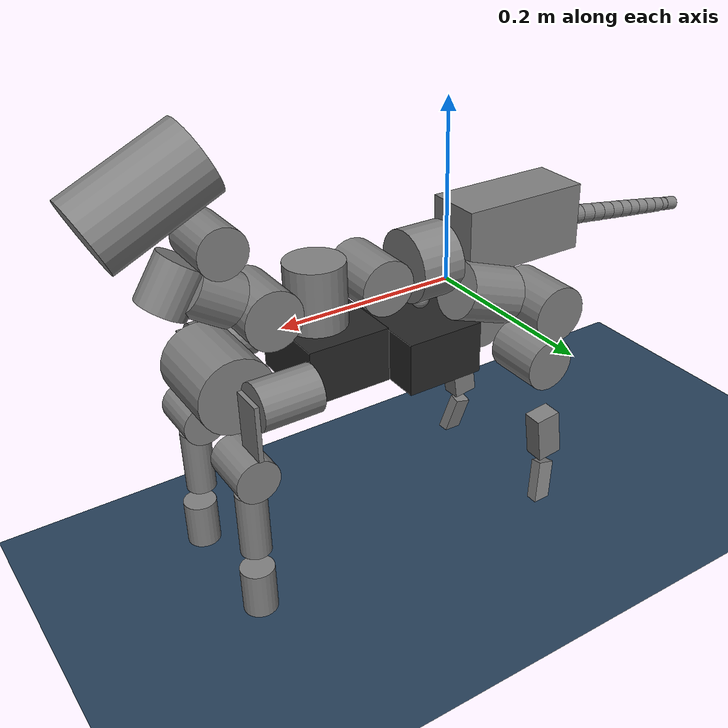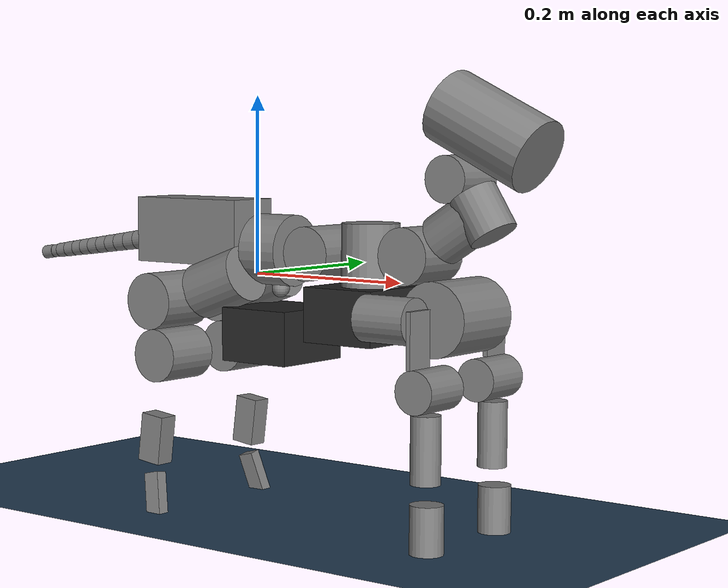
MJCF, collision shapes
<mujoco model="marsdog scene">
  <include file="marsdog.xml" />

  <statistic center="0.4 0 0.3" extent="1.2" />

  <visual>
    <headlight diffuse="0.6 0.6 0.6" ambient="0.3 0.3 0.3" specular="0 0 0" />
    <rgba haze="0.15 0.25 0.35 1" />
    <global azimuth="-140" elevation="-20" />
  </visual>

  <asset>
    <texture type="skybox" builtin="gradient" rgb1="0.3 0.5 0.7" rgb2="0 0 0" width="512" height="3072"/>
    <!-- floor -->
    <texture type="2d" name="groundplane" builtin="checker" mark="edge" rgb1="0.2 0.3 0.4" rgb2="0.1 0.2 0.3" markrgb="0.8 0.8 0.8" width="300" height="300"/>
    <material name="groundplane" texture="groundplane" texuniform="true" texrepeat="5 5" reflectance="0.2"/>
    <material name="step" rgba="0.55 0.55 0.58 1" />
  </asset>

  <worldbody>
    <!-- 机器人前方 box 台阶-->
    <light pos="0 0 1.5" dir="0 0 -1" directional="true"/>
    <geom name="floor" pos="0 0 -0.27" size="0 0 0.05" type="plane" material="groundplane" />
  </worldbody>
</mujoco>

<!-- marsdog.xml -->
<mujoco model="marsdog">
  <compiler angle="radian" meshdir="." autolimits="true"/>
  <default>
    <default class="marsdog">
      <default class="visual">
        <geom type="mesh" contype="0" conaffinity="0" group="2" density="0" material="body"/>
      </default>
      <default class="collision">
        <geom group="3" contype="1" conaffinity="1"/>
      </default>
    </default>
  </default>
  <asset>
    <material name="body" rgba="0.898039 0.917647 0.929412 1"/>
    <mesh name="base_link" file="base_link.STL" />
    <mesh name="imu_link" file="imu_link.STL" />
    <mesh name="tail1_link" file="tail1_link.STL" />
    <mesh name="tail2_link" file="tail2_link.STL" />
    <mesh name="tail3_link" file="tail3_link.STL" />
    <mesh name="tail4_link" file="tail4_link.STL" />
    <mesh name="tail5_link" file="tail5_link.STL" />
    <mesh name="tail6_link" file="tail6_link.STL" />
    <mesh name="tail7_link" file="tail7_link.STL" />
    <mesh name="tail8_link" file="tail8_link.STL" />
    <mesh name="tail9_link" file="tail9_link.STL" />
    <mesh name="tail10_link" file="tail10_link.STL" />
    <mesh name="tail11_link" file="tail11_link.STL" />
    <mesh name="tail12_link" file="tail12_link.STL" />
    <mesh name="rl_hip_link" file="rl_hip_link.STL" />
    <mesh name="rl_thigh_link" file="rl_thigh_link.STL" />
    <mesh name="rl_calf_link" file="rl_calf_link.STL" />
    <mesh name="rl_tarsus_link" file="rl_tarsus_link.STL" />
    <mesh name="rl_foot_link" file="rl_foot_link.STL" />
    <mesh name="rr_hip_link" file="rr_hip_link.STL" />
    <mesh name="rr_thigh_link" file="rr_thigh_link.STL" />
    <mesh name="rr_calf_link" file="rr_calf_link.STL" />
    <mesh name="rr_tarsus_link" file="rr_tarsus_link.STL" />
    <mesh name="rr_foot_link" file="rr_foot_link.STL" />
    <mesh name="waist_roll_link" file="waist_roll_link.STL" />
    <mesh name="waist_pitch_link" file="waist_pitch_link.STL" />
    <mesh name="waist_yaw_link" file="waist_yaw_link.STL" />
    <mesh name="neck_pitch_link" file="neck_pitch_link.STL" />
    <mesh name="head_roll_link" file="head_roll_link.STL" />
    <mesh name="head_yaw_link" file="head_yaw_link.STL" />
    <mesh name="head_pitch_link" file="head_pitch_link.STL" />
    <mesh name="fl_hip_pitch_link" file="fl_hip_pitch_link.STL" />
    <mesh name="fl_thigh_roll_link" file="fl_thigh_roll_link.STL" />
    <mesh name="fl_calf_link" file="fl_calf_link.STL" />
    <mesh name="fl_tarsus_link" file="fl_tarsus_link.STL" />
    <mesh name="fl_foot_link" file="fl_foot_link.STL" />
    <mesh name="fr_hip_pitch_link" file="fr_hip_pitch_link.STL" />
    <mesh name="fr_thigh_roll_link" file="fr_thigh_roll_link.STL" />
    <mesh name="fr_calf_link" file="fr_calf_link.STL" />
    <mesh name="fr_tarsus_link" file="fr_tarsus_link.STL" />
    <mesh name="fr_foot_link" file="fr_foot_link.STL" />
  </asset>
  <worldbody>
    <body name="base_link" pos="0 0 0" childclass="marsdog">
      <freejoint name="base_link"/>
      <inertial pos="-0.013554 0.000373 0.001080" mass="2.875" fullinertia="0.008005838 0.013668028 0.009240322 0.000066867 0.003619324 -0.000048830" />
      <geom class="visual" mesh="base_link"/>
      <geom pos="0.0350059 0 -0.065279" euler="0 0 0" contype="0" conaffinity="0" group="2" rgba="0.15 0.15 0.15 1" type="box" size="0.045 0.05 0.03"/>
      <geom name="base_hip_r_collision" class="collision" type="cylinder" size="0.032 0.035" pos="-0.021722 0.0335 -0.009186" euler="0 1.22172569 0"/>
      <geom name="base_hip_l_collision" class="collision" type="cylinder" size="0.032 0.035" pos="-0.021722 -0.0335 -0.009186" euler="0 1.22172569 0"/>
      <geom name="base_rear_collision" class="collision" type="box" size="0.0745 0.0325 0.0375" pos="-0.081722 0 0.0462" euler="0 0 0"/>
      <geom name="base_front_collision" class="collision" type="cylinder" size="0.04 0.025" pos="0.030059 0 0.028279" euler="0 1.57079632679 0"/>
      <geom name="base_battery_collision" class="collision" type="box" size="0.045 0.05 0.03" pos="0.0350059 0 -0.065279" euler="0 0 0"/>

      <!-- ==================== IMU (fixed) ==================== -->
      <body name="imu_link" pos="0.034059 -0.00020534 -0.015067" euler="-0.001365 0 0">
        <inertial pos="-6.93889390390723E-18 0 0" mass="2.51327412287186E-05" fullinertia="3.35103216382916E-11 3.35103216382916E-11 5.02654824574372E-11 1.5694542800438E-43 1.20912661957474E-27 -4.41762106923767E-28" />
        <site name="imu" size="0.01" pos="0 0 0"/>
        <geom class="visual" mesh="imu_link"/>
      </body>

      <!-- ==================== TAIL CHAIN (12 segments, each pitch+yaw via virtual link) ==================== -->
      <body name="tail1_virtual_link" pos="-0.16794 -8.4332E-05 0.033174" euler="-0.00029343 -0.13963 0.00083919">
        <inertial pos="0 0 0" mass="0.0001" fullinertia="1e-9 1e-9 1e-9 0 0 0" />
        <body name="tail1_link" pos="0 0 0" euler="0 0 0">
          <inertial pos="-0.00762274422412546 4.59468082539272E-08 8.03588656728138E-09" mass="0.0141851775235556" fullinertia="8.34744427360573E-07 6.99096415891827E-07 6.99051973482161E-07 4.83516448208726E-12 -8.10571938743082E-12 -8.1465996643223E-12" />
          <geom class="visual" mesh="tail1_link"/>
          <geom name="tail1_collision" class="collision" type="cylinder" size="0.0112 0.01115" pos="-0.00899 0 0" euler="0 1.57079632679 0"/>
          <body name="tail2_virtual_link" pos="-0.018124 0 0" euler="0 0 0">
            <inertial pos="0 0 0" mass="0.0001" fullinertia="1e-9 1e-9 1e-9 0 0 0" />
            <body name="tail2_link" pos="0 0 0" euler="0 0 0">
              <inertial pos="-0.00650946186307066 -1.52170692019338E-09 2.7910038724599E-09" mass="0.0127952179052056" fullinertia="7.00743774263552E-07 5.92152060742917E-07 5.92123674862296E-07 -2.50808859184526E-13 -4.83067761601916E-13 -1.10662095911008E-11" />
              <geom class="visual" mesh="tail2_link"/>
              <geom name="tail2_collision" class="collision" type="cylinder" size="0.0108 0.0108" pos="-0.00781 0 0" euler="0 1.57079632679 0"/>
              <body name="tail3_virtual_link" pos="-0.0167 0 0" euler="0 0 0">
                <inertial pos="0 0 0" mass="0.0001" fullinertia="1e-9 1e-9 1e-9 0 0 0" />
                <body name="tail3_link" pos="0 0 0" euler="0 0 0">
                  <inertial pos="-0.00631416853552891 -4.82119415570748E-08 -7.91465742944197E-08" mass="0.0116835708764158" fullinertia="6.0668791411361E-07 5.11928508664374E-07 5.1192990570307E-07 -3.0889534578389E-12 -4.86924442197162E-12 2.46362720395388E-13" />
                  <geom class="visual" mesh="tail3_link"/>
                  <geom name="tail3_collision" class="collision" type="cylinder" size="0.0105 0.0105" pos="-0.00756 0 0" euler="0 1.57079632679 0"/>
                  <body name="tail4_virtual_link" pos="-0.016 0 0" euler="0 0 0">
                    <inertial pos="0 0 0" mass="0.0001" fullinertia="1e-9 1e-9 1e-9 0 0 0" />
                    <body name="tail4_link" pos="0 0 0" euler="0 0 0">
                      <inertial pos="-0.0061185438841842 -1.48748220199502E-08 9.01788682616811E-09" mass="0.0106347694237068" fullinertia="5.23074870443639E-07 4.40635446836679E-07 4.40551070538819E-07 -8.11977613395735E-13 3.04824638664323E-13 5.81788845198795E-12" />
                      <geom class="visual" mesh="tail4_link"/>
                      <geom name="tail4_collision" class="collision" type="cylinder" size="0.0102 0.0102" pos="-0.00731 0 0" euler="0 1.57079632679 0"/>
                      <body name="tail5_virtual_link" pos="-0.0157 0 0" euler="0 0 0">
                        <inertial pos="0 0 0" mass="0.0001" fullinertia="1e-9 1e-9 1e-9 0 0 0" />
                        <body name="tail5_link" pos="0 0 0" euler="0 0 0">
                          <inertial pos="-0.00590663030331451 -2.33051585113442E-08 -1.20618755539148E-08" mass="0.00985155554987781" fullinertia="4.66785983258564E-07 3.89047578750144E-07 3.89031984365247E-07 -1.04372443702653E-12 1.07564984089307E-13 -5.17550076333586E-12" />
                          <geom class="visual" mesh="tail5_link"/>
                          <geom name="tail5_collision" class="collision" type="cylinder" size="0.01 0.01" pos="-0.00706 0 0" euler="0 1.57079632679 0"/>
                          <body name="tail6_virtual_link" pos="-0.0152 0 0" euler="0 0 0">
                            <inertial pos="0 0 0" mass="0.0001" fullinertia="1e-9 1e-9 1e-9 0 0 0" />
                            <body name="tail6_link" pos="0 0 0" euler="0 0 0">
                              <inertial pos="-0.0056903437316127 5.41744728244087E-09 1.2834479590218E-09" mass="0.00923075165523409" fullinertia="4.22373239284678E-07 3.47612621110504E-07 3.47597874849156E-07 3.15975255616925E-13 9.81905658686649E-13 -5.09145044445086E-12" />
                              <geom class="visual" mesh="tail6_link"/>
                              <geom name="tail6_collision" class="collision" type="cylinder" size="0.0098 0.0098" pos="-0.00681 0 0" euler="0 1.57079632679 0"/>
                              <body name="tail7_virtual_link" pos="-0.0147 0 0" euler="0 0 0">
                                <inertial pos="0 0 0" mass="0.0001" fullinertia="1e-9 1e-9 1e-9 0 0 0" />
                                <body name="tail7_link" pos="0 0 0" euler="0 0 0">
                                  <inertial pos="-0.00549512158168441 4.41705623466238E-10 5.92188553749651E-09" mass="0.0083927589340141" fullinertia="3.62504640761287E-07 2.97470779283463E-07 2.97471433861245E-07 5.27937408432459E-15 3.45073339124299E-13 -4.1907348517631E-12" />
                                  <geom class="visual" mesh="tail7_link"/>
                                  <geom name="tail7_collision" class="collision" type="cylinder" size="0.0095 0.0095" pos="-0.00656 0 0" euler="0 1.57079632679 0"/>
                                  <body name="tail8_virtual_link" pos="-0.0144 0 0" euler="0 0 0">
                                    <inertial pos="0 0 0" mass="0.0001" fullinertia="1e-9 1e-9 1e-9 0 0 0" />
                                    <body name="tail8_link" pos="0 0 0" euler="0 0 0">
                                      <inertial pos="-0.00563909552581265 4.20880061358098E-08 -1.77922774846628E-08" mass="0.00801677850255402" fullinertia="3.31236320661279E-07 2.7967143331277E-07 2.79664129565631E-07 1.88525085945086E-12 -6.1350591694735E-13 -5.43556752743582E-12" />
                                      <geom class="visual" mesh="tail8_link"/>
                                      <geom name="tail8_collision" class="collision" type="cylinder" size="0.0092 0.0092" pos="-0.00641 0 0" euler="0 1.57079632679 0"/>
                                      <body name="tail9_virtual_link" pos="-0.0147 0 0" euler="0 0 0">
                                        <inertial pos="0 0 0" mass="0.0001" fullinertia="1e-9 1e-9 1e-9 0 0 0" />
                                        <body name="tail9_link" pos="0 0 0" euler="0 0 0">
                                          <inertial pos="-0.00551185736109 -8.70025468335811E-10 -1.1744280548065E-08" mass="0.00782767270242887" fullinertia="3.07000053171084E-07 2.66907201950988E-07 2.66903344499661E-07 -3.31166362575087E-15 -5.04747137565905E-13 -2.47028550370464E-12" />
                                          <geom class="visual" mesh="tail9_link"/>
                                          <geom name="tail9_collision" class="collision" type="cylinder" size="0.009 0.00895" pos="-0.00636 0 0" euler="0 1.57079632679 0"/>
                                          <body name="tail10_virtual_link" pos="-0.0146 0 0" euler="0 0 0">
                                            <inertial pos="0 0 0" mass="0.0001" fullinertia="1e-9 1e-9 1e-9 0 0 0" />
                                            <body name="tail10_link" pos="0 0 0" euler="0 0 0">
                                              <inertial pos="-0.00518800969906508 -1.10405673769964E-08 -2.52233224307119E-08" mass="0.00666177522641977" fullinertia="2.3897663010197E-07 2.06527078390579E-07 2.06521274479418E-07 -3.77806868874636E-13 -8.43932517675259E-13 -1.29291438446809E-12" />
                                              <geom class="visual" mesh="tail10_link"/>
                                              <geom name="tail10_collision" class="collision" type="cylinder" size="0.0086 0.0086" pos="-0.00600 0 0" euler="0 1.57079632679 0"/>
                                              <body name="tail11_virtual_link" pos="-0.0139 0 0" euler="0 0 0">
                                                <inertial pos="0 0 0" mass="0.0001" fullinertia="1e-9 1e-9 1e-9 0 0 0" />
                                                <body name="tail11_link" pos="0 0 0" euler="0 0 0">
                                                  <inertial pos="-0.00495915504044836 8.55362992935316E-09 5.3374045183574E-08" mass="0.0046207645314435" fullinertia="1.44477704901687E-07 1.4682737778813E-07 1.07695667986963E-07 1.71673320006815E-13 1.52603803639589E-12 -3.11141554202373E-14" />
                                                  <geom class="visual" mesh="tail11_link"/>
                                                  <geom name="tail11_collision" class="collision" type="cylinder" size="0.0077 0.0082" pos="-0.00546 0 0" euler="0 1.57079632679 0"/>
                                                  <body name="tail12_virtual_link" pos="-0.011979 0 0" euler="0 0 0">
                                                    <inertial pos="0 0 0" mass="0.0001" fullinertia="1e-9 1e-9 1e-9 0 0 0" />
                                                    <body name="tail12_link" pos="0 0 0" euler="0 0 0">
                                                      <inertial pos="-0.00591500067079281 -2.92924372681524E-07 4.29541290314361E-07" mass="0.00556653973765066" fullinertia="1.74072299338633E-07 1.54269355650383E-07 1.54216751886065E-07 5.73927385554313E-12 -9.67312946794018E-12 -1.52040940825198E-11" />
                                                      <geom class="visual" mesh="tail12_link"/>
                                                      <geom name="tail12_collision" class="collision" type="cylinder" size="0.008 0.008" pos="-0.00650 0 0" euler="0 1.57079632679 0"/>
                                                    </body>
                                                  </body>
                                                </body>
                                              </body>
                                            </body>
                                          </body>
                                        </body>
                                      </body>
                                    </body>
                                  </body>
                                </body>
                              </body>
                            </body>
                          </body>
                        </body>
                      </body>
                    </body>
                  </body>
                </body>
              </body>
            </body>
          </body>
        </body>
      </body>

      <!-- ==================== REAR LEFT LEG (rl) ==================== -->
      <body name="rl_hip_link" pos="-0.041722 0.0335 -0.015186" euler="-0.0014526 -0.34907 0.00049681">
        <joint name="rl_hip_joint" type="hinge" range="-0.49 0.77" axis="1 -0.00046685 0"/>
        <inertial pos="-0.045138 0.013793 -0.000017" mass="0.374" fullinertia="0.000168286 0.000185931 0.000184126 0.000007536 0.000000345 0.000000002"/>
        <geom class="visual" mesh="rl_hip_link"/>
        <geom name="rl_hip_collision" class="collision" type="cylinder" size="0.032 0.035" pos="-0.045 0.024 0" euler="1.57079632679 0 0"/>
        <body name="rl_thigh_link" pos="-0.046282 0.039422 5.0587E-05" euler="0 0.34907 0">
          <joint name="rl_thigh_joint" type="hinge" range="-0.71 1.77" axis="0 1 0.001365"/>
          <inertial pos="0.008049 -0.015362 -0.059444" mass="0.414" fullinertia="0.000341578 0.000290312 0.000218302 -0.000003441 0.000023433 -0.000011479"/>
          <geom class="visual" mesh="rl_thigh_link"/>
          <geom name="rl_thigh_collision" class="collision" type="cylinder" size="0.030 0.0325" pos="0.008 -0.015 -0.061" euler="1.57079632679 0 0"/>
          <body name="rl_calf_link" pos="0.023309 0.0090594 -0.11679" euler="0 0 0">
            <joint name="rl_calf_joint" type="hinge" range="0 1.56" axis="0 1 -0.001365"/>
            <inertial pos="-0.018059 -0.003444 -0.027577" mass="0.048" fullinertia="0.000035198 0.000036916 0.000005612 0.000000009 -0.000003707 -0.000000131"/>
            <geom class="visual" mesh="rl_calf_link"/>
            <geom name="rl_calf_collision" class="collision" type="box" size="0.0115 0.015 0.0275" pos="-0.019375 0.0000531 -0.038886" euler="3.1375032 -0.1227633 -1.5515043"/>
            <body name="rl_tarsus_link" pos="-0.01875 0.00010616 -0.077772" euler="0 0 0">
              <joint name="rl_tarsus_joint" type="hinge" range="-3.14159265358979 3.14159265358979" axis="0 -1 -0.001365"/>
              <inertial pos="0.001447 0.000898 -0.022124" mass="0.032" fullinertia="0.000017088 0.000018218 0.000002865 -0.000000745 0.000003837 0.000002996"/>
              <geom class="visual" mesh="rl_tarsus_link"/>
              <geom name="rl_tarsus_collision" class="collision" type="box" size="0.007 0.01 0.03" pos="0.003795 0.0052055 -0.030978" euler="-2.9552241 0.2431544 -1.6008232"/>
              <body name="rl_foot_link" pos="0.01159 0.010411 -0.061956" euler="0 0 0">
                <inertial pos="-0.000299 0.000002 0.001204" mass="0.005" fullinertia="0.000000119 0.000000115 0.000000172 0.000000000 -0.000000014 0.000000000"/>
                <geom class="visual" mesh="rl_foot_link"/>
                <geom name="rl_foot_collision" class="collision" type="mesh" mesh="rl_foot_link"/>
                <site name="rl" pos="0 0.0055908 -0.051933" type="sphere" size="0.023" group="5"/>
              </body>
            </body>
          </body>
        </body>
      </body>

      <!-- ==================== REAR RIGHT LEG (rr) ==================== -->
      <body name="rr_hip_link" pos="-0.041722 -0.0335 -0.015186" euler="-0.0014526 -0.34907 0.00049681">
        <joint name="rr_hip_joint" type="hinge" range="-0.49 0.77 " axis="-1 0.00046685 0"/>
        <inertial pos="-0.045138 -0.013793 -0.000017" mass="0.374" fullinertia="0.000168286 0.000185931 0.000184126 -0.000007536 0.000000345 -0.000000002"/>
        <geom class="visual" mesh="rr_hip_link"/>
        <geom name="rr_hip_collision" class="collision" type="cylinder" size="0.032 0.035" pos="-0.045 -0.024 0" euler="1.57079632679 0 0"/>
        <body name="rr_thigh_link" pos="-0.046318 -0.039378 -5.0537E-05" euler="0 0.34907 0">
          <joint name="rr_thigh_joint" type="hinge" range="-0.71 1.77 " axis="0 1 0.001365"/>
          <inertial pos="0.008049 0.015362 -0.059444" mass="0.414" fullinertia="0.000341578 0.000290312 0.000218302 0.000003441 0.000023433 0.000011479"/>
          <geom class="visual" mesh="rr_thigh_link"/>
          <geom name="rr_thigh_collision" class="collision" type="cylinder" size="0.030 0.0325" pos="0.008 0.015 -0.061" euler="1.57079632679 0 0"/>
          <body name="rr_calf_link" pos="0.022904 -0.0087404 -0.1169" euler="0 0 0">
            <joint name="rr_calf_joint" type="hinge" range="0 1.56" axis="0 1 0.001365"/>
            <inertial pos="-0.018059 0.003444 -0.027577" mass="0.048" fullinertia="0.000035198 0.000036916 0.000005612 -0.000000009 -0.000003707 0.000000131"/>
            <geom class="visual" mesh="rr_calf_link"/>
            <geom name="rr_calf_collision" class="collision" type="box" size="0.0115 0.015 0.0275" pos="-0.019375 -0.0000531 -0.038886" euler="-3.1375032 -0.1227633 1.5515043"/>
            <body name="rr_tarsus_link" pos="-0.019514 0 -0.077584" euler="0 0 0">
              <joint name="rr_tarsus_joint" type="hinge" range="-3.14159265358979 3.14159265358979" axis="0 -1 -0.001365"/>
              <inertial pos="0.001447 -0.000898 -0.022124" mass="0.032" fullinertia="0.000017088 0.000018218 0.000002865 0.000000745 0.000003837 -0.000002996"/>
              <geom class="visual" mesh="rr_tarsus_link"/>
              <geom name="rr_tarsus_collision" class="collision" type="box" size="0.007 0.01 0.03" pos="0.003795 -0.0052055 -0.030978" euler="2.9552241 0.2431544 1.6008232"/>
              <body name="rr_foot_link" pos="0.011375 -0.010242 -0.062024" euler="0 0 0">
                <inertial pos="-0.000299 -0.000002 0.001204" mass="0.005" fullinertia="0.000000119 0.000000115 0.000000172 0.000000000 -0.000000014 0.000000000"/>
                <geom class="visual" mesh="rr_foot_link"/>
                <geom name="rr_foot_collision" class="collision" type="mesh" mesh="rr_foot_link"/>
                <site name="rr" pos="0 0.0055908 -0.051933" type="sphere" size="0.023" group="5"/>
              </body>
            </body>
          </body>
        </body>
      </body>

      <!-- ==================== WAIST CHAIN: roll -> pitch -> yaw ==================== -->
      <body name="waist_roll_link" pos="0.055059 0 0.028279" euler="-0.001365 0 0">
        <joint name="waist_roll_joint" type="hinge" range="-1 1" axis="1 0 0"/>
        <inertial pos="0.039275 -0.004052 0.000334" mass="0.337" fullinertia="0.000180303 0.000178761 0.000189349 0.000006126 -0.000000251 0.000002575"/>
        <geom class="visual" mesh="waist_roll_link"/>
        <geom name="waist_roll_collision" class="collision" type="cylinder" size="0.03 0.035" pos="0.041 0 0" euler="1.57079632679 0 0"/>

        <body name="waist_pitch_link" pos="0.0415 -0.0235 0" euler="0 0 0">
          <joint name="waist_pitch_joint" type="hinge" range="0 0.24" axis="0 1 0.001365"/>
          <inertial pos="0.056619 0.022538 -0.039921" mass="1.098" fullinertia="0.002254678 0.002188164 0.001367514 -0.000032049 -0.000089799 0.000042627"/>
          <geom class="visual" mesh="waist_pitch_link"/>
          <geom pos="0.055 0.0235 -0.064" euler="0 0 0" contype="0" conaffinity="0" group="2" rgba="0.15 0.15 0.15 1" type="box" size="0.045 0.05 0.03"/>
          <geom name="waist_pitch_collision" class="collision" type="cylinder" size="0.032 0.035" pos="0.063 0.0235 0" euler="0 0 0"/>
          <geom name="waist_pitch_collision2" class="collision" type="box" size="0.045 0.05 0.03" pos="0.055 0.0235 -0.064" euler="0 0 0"/>

          <body name="waist_yaw_link" pos="0.0635 0.023463 0.026782" euler="0 0 0">
            <joint name="waist_yaw_joint" type="hinge" range="-1.2 1.2" axis="0 -0.001365 1"/>
            <inertial pos="0.093599 0.001895 -0.063865" mass="1.264" fullinertia="0.002513037 0.002998499 0.002016199 0.000068812 0.000977446 -0.000092237"/>
            <geom class="visual" mesh="waist_yaw_link" pos="0.000037 0.000032 0" euler="0 0 0"/>
            <geom name="waist_yaw_collision1" class="collision" type="cylinder" size="0.031 0.034" pos="0.063111 0.002447 -0.023828" euler="1.570796 0 0"/>
            <geom name="waist_yaw_collision2" class="collision" type="cylinder" size="0.040 0.044" pos="0.111 0.000027 -0.085968" euler="1.570796 0 0"/>

            <!-- ==================== NECK + HEAD CHAIN ==================== -->
            <body name="neck_pitch_link" pos="0.063536 0.031281 -0.022505" euler="0 0 0">
              <joint name="neck_pitch_joint" type="hinge" range="-0.58 0.45" axis="0 1 0"/>
              <inertial pos="0.045423 -0.027662 0.0289" mass="0.295" fullinertia="0.000146524 0.000165504 0.000176361 0.000028014 -0.000031716 0.000017796"/>
              <geom class="visual" mesh="neck_pitch_link" pos="0 0 0.000032" euler="0 0 0"/>
              <geom name="neck_pitch_collision" class="collision" type="cylinder" size="0.028 0.025" pos="0.047501 -0.02831 0.028921" euler="-3.1415915 -1.005106 -3.1415915"/>

              <body name="head_roll_link" pos="0.067501 -0.02831 0.042889" euler="0 -0.56569 0">
                <joint name="head_roll_joint" type="hinge" range="-3.14159265358979 3.14159265358979" axis="-1 0.00073162 0"/>
                <inertial pos="0.01026 -0.003837 -0.000734" mass="0.274" fullinertia="0.000110718 0.000114116 0.000100935 -0.000000100 -0.000000325 0.000000559"/>
                <geom class="visual" mesh="head_roll_link" pos="-0.014338 0 0.004199" euler="0 0 0"/>
                <geom name="head_roll_collision" class="collision" type="cylinder" size="0.026 0.025" pos="0.011662 -0.004 -0.005801" euler="0 0 0"/>

                <body name="head_yaw_link" pos="0.015514 0.0010134 0.014495" euler="0 0 0">
                  <joint name="head_yaw_joint" type="hinge" range="-3.14159265358979 3.14159265358979" axis="0 0 1"/>
                  <inertial pos="-0.013963 0.004899 0.029247" mass="0.274" fullinertia="0.000114052 0.000100887 0.000110740 0.000000468 0.000000028 0.000000570"/>
                  <geom class="visual" mesh="head_yaw_link" pos="-0.014338 0 0.004199" euler="-1.5696 0.0007037 -1.5707972"/>
                  <geom name="head_yaw_collision" class="collision" type="cylinder" size="0.025 0.03" pos="-0.014338 0.006 0.029199" euler="1.570796 0 0"/>

                  <body name="head_pitch_link" pos="-0.0145282626 -0.0215314491 0.0289972420" euler="0 0.56570 0">
                    <joint name="head_pitch_joint" type="hinge" range="-1.7 0.5" axis="0 1 0"/>
                    <inertial pos="0.007085 0.00162 0.010054" mass="0.025" fullinertia="0.000006091 0.000008226 0.000004837 -0.000000973 -0.000002297 -0.000001274"/>
                    <geom class="visual" mesh="head_pitch_link" pos="0 0 0.000032" euler="0 0 0"/>
                    <geom name="head_pitch_collision" class="collision" type="cylinder" size="0.04 0.06" pos="0.05 0.01 0.050032" euler="3.1415926 1.12173 3.1415926"/>
                  </body>
                </body>
              </body>
            </body>

            <!-- ==================== FRONT LEFT LEG (fl) ==================== -->
            <body name="fl_hip_pitch_link" pos="0.11134 0.040867 -0.085936" euler="0 0 0">
              <joint name="fl_hip_pitch_joint" type="hinge" range="-0.97 3.14159265358979 " axis="0 -1 -0.001365"/>
              <inertial pos="-0.036249 0.026796 -0.000863" mass="0.266" fullinertia="0.000094796 0.000119621 0.000125834 0.000009648 -0.000000375 0.000000295"/>
              <geom class="visual" mesh="fl_hip_pitch_link" pos="0.000037 0.000032 0" euler="0 0 0"/>
              <geom name="fl_hip_pitch_collision" class="collision" type="cylinder" size="0.025 0.0315" pos="-0.036 0.027114 0.000032" euler="0 1.570796 0"/>
              <body name="fl_thigh_roll_link" pos="-0.0205 0.028 3.8219E-05" euler="0 0 0">
                <joint name="fl_thigh_roll_joint" type="hinge" range="-0.18 3.14159265358979" axis="0.99966 3.5842E-05 0.026258"/>
                <inertial pos="0.019147 0.004458 -0.03082" mass="0.087" fullinertia="0.000074448 0.000076387 0.000013919 -0.000002300 0.000014306 0.000011338"/>
                <geom class="visual" mesh="fl_thigh_roll_link" pos="0.000037 0.000032 0" euler="0 0 0"/>
                <geom name="fl_thigh_collision" class="collision" type="box" size="0.0025 0.0175 0.03" pos="0.0218 0.002037 -0.016968" euler="0 0 0"/>
                <body name="fl_calf_link" pos="0.0235 0.0034955 -0.069995" euler="0 0 0">
                  <joint name="fl_calf_joint" type="hinge" range="-1.93 1.82 " axis="0 -1 -0.001365"/>
                  <inertial pos="0.001263 -0.012283 -0.03026" mass="0.462" fullinertia="0.000780649 0.000757818 0.000138689 -0.000002898 0.000027933 0.000060391"/>
                  <geom class="visual" mesh="fl_calf_link" pos="0.000037 0.000032 0" euler="0 0 0"/>
                  <geom name="fl_calf_collision1" class="collision" type="cylinder" size="0.016 0.036" pos="0.00202 -0.00848 -0.060938" euler="0 0 0"/>
                  <geom name="fl_calf_collision2" class="collision" type="cylinder" size="0.023 0.0285" pos="0.00202 -0.01408 0.000032" euler="1.570796 0 0"/>
                  <body name="fl_tarsus_link" pos="0.0040403 -0.0022336 -0.12194" euler="0 0 0">
                    <joint name="fl_tarsus_joint" type="hinge" range="-0.03 1.49 " axis="0 1 0.001365"/>
                    <inertial pos="0 -0.005009 -0.026597" mass="0.067" fullinertia="0.000017528 0.000015233 0.000008400 0.000000000 -0.000000001 -0.000000662"/>
                    <geom class="visual" mesh="fl_tarsus_link" pos="0.000037 0.000032 0" euler="0 0 0"/>
                    <geom name="fl_tarsus_collision" class="collision" type="cylinder" size="0.018 0.026" pos="0 -0.003688 -0.020942" euler="0 0 0"/>
                    <body name="fl_foot_link" pos="0 -0.005449 -0.051948" euler="0 0 0">
                      <inertial pos="0 0.000039 0.001272" mass="0.005" fullinertia="0.000000119 0.000000115 0.000000172 0.000000000 -0.000000014 0.000000000"/>
                      <geom class="visual" mesh="fl_foot_link" pos="0.000037 0.000032 0" euler="0 0 0"/>
                      <geom name="fl_foot_collision" class="collision" type="mesh" mesh="fl_foot_link"/>
                      <site name="fl" pos="0 -0.005449 -0.051948" type="sphere" size="0.023" group="5"/>
                    </body>
                  </body>
                </body>
              </body>
            </body>

            <!-- ==================== FRONT RIGHT LEG (fr) ==================== -->
            <body name="fr_hip_pitch_link" pos="0.11134 -0.040633 -0.086047" euler="0 0 0">
              <joint name="fr_hip_pitch_joint" type="hinge" range="-0.97 3.14159265358979" axis="0 -1 -0.001365"/>
              <inertial pos="-0.036249 -0.026722 -0.000863" mass="0.266" fullinertia="0.000094796 0.000119621 0.000125834 -0.000009648 -0.000000375 -0.000000295"/>
              <geom class="visual" mesh="fr_hip_pitch_link" pos="0.000037 0.000032 0" euler="0 0 0"/>
              <geom name="fr_hip_pitch_collision" class="collision" type="cylinder" size="0.025 0.0315" pos="-0.036 -0.02704 0.000032" euler="0 1.570796 0"/>
              <body name="fr_thigh_roll_link" pos="-0.020493 -0.027999 -0.00057652" euler="0 0 0">
                <joint name="fr_thigh_roll_joint" type="hinge" range="-0.18 3.14159265358979 " axis="-0.99966 3.5842E-05 -0.026258"/>
                <inertial pos="0.019147 -0.004384 -0.03082" mass="0.087" fullinertia="0.000074448 0.000076387 0.000013919 0.000002300 0.000014306 -0.000011338"/>
                <geom class="visual" mesh="fr_thigh_roll_link" pos="0.000037 0.000032 0" euler="0 0 0"/>
                <geom name="fr_thigh_collision" class="collision" type="box" size="0.0025 0.0175 0.03" pos="0.0218 -0.001963 -0.016968" euler="0 0 0"/>
                <body name="fr_calf_link" pos="0.02533 -0.0033053 -0.069363" euler="0 0 0">
                  <joint name="fr_calf_joint" type="hinge" range="-1.93 1.82" axis="0 -1 -0.001365"/>
                  <inertial pos="0.001263 0.012357 -0.03026" mass="0.462" fullinertia="0.000780649 0.000757818 0.000138689 0.000002898 0.000027933 -0.000060391"/>
                  <geom class="visual" mesh="fr_calf_link" pos="0.000037 0.000032 0" euler="0 0 0"/>
                  <geom name="fr_calf_collision1" class="collision" type="cylinder" size="0.016 0.036" pos="0.00202 0.008554 -0.060938" euler="0 0 0"/>
                  <geom name="fr_calf_collision2" class="collision" type="cylinder" size="0.023 0.0285" pos="0.00202 0.014154 0.000032" euler="1.570796 0 0"/>
                  <body name="fr_tarsus_link" pos="0.0055464 0.0025664 -0.12187" euler="0 0 0">
                    <joint name="fr_tarsus_joint" type="hinge" range="-0.03 1.49 " axis="0 1 0.001365"/>
                    <inertial pos="0 0.005083 -0.026597" mass="0.067" fullinertia="0.000017528 0.000015233 0.000008400 0.000000000 -0.000000001 0.000000662"/>
                    <geom class="visual" mesh="fr_tarsus_link" pos="0.000037 0.000032 0" euler="0 0 0"/>
                    <geom name="fr_tarsus_collision" class="collision" type="cylinder" size="0.018 0.026" pos="0 0.003832 -0.020935" euler="0 0 0"/>
                    <body name="fr_foot_link" pos="0 0.0055908 -0.051933" euler="0 0 0">
                      <inertial pos="0 0.000035 0.001272" mass="0.005" fullinertia="0.000000119 0.000000115 0.000000172 0.000000000 -0.000000014 0.000000000"/>
                      <geom class="visual" mesh="fr_foot_link" pos="0.000037 0.000032 0" euler="0 0 0"/>
                      <geom name="fr_foot_collision" class="collision" type="mesh" mesh="fr_foot_link"/>
                      <site name="fr" pos="0 0.0055908 -0.051933" type="sphere" size="0.023" group="5"/>
                    </body>
                  </body>
                </body>
              </body>
            </body>
          </body>
        </body>
      </body>
    </body>
  </worldbody>
  <sensor>
    <gyro name="imu_ang_vel" site="imu"/>
    <velocimeter name="imu_lin_vel" site="imu"/>
  </sensor>
  <equality>
    <joint
      name="rl_tarsus_mimic"
      joint1="rl_tarsus_joint"
      joint2="rl_calf_joint"
      polycoef="0 1.0 0 0 0"
      solref="0.005 1"
      solimp="0.95 0.99 0.001"
    />
    <joint
      name="rr_tarsus_mimic"
      joint1="rr_tarsus_joint"
      joint2="rr_calf_joint"
      polycoef="0 -1.0 0 0 0"
      solref="0.005 1"
      solimp="0.95 0.99 0.001"
    />
  </equality>
</mujoco>
